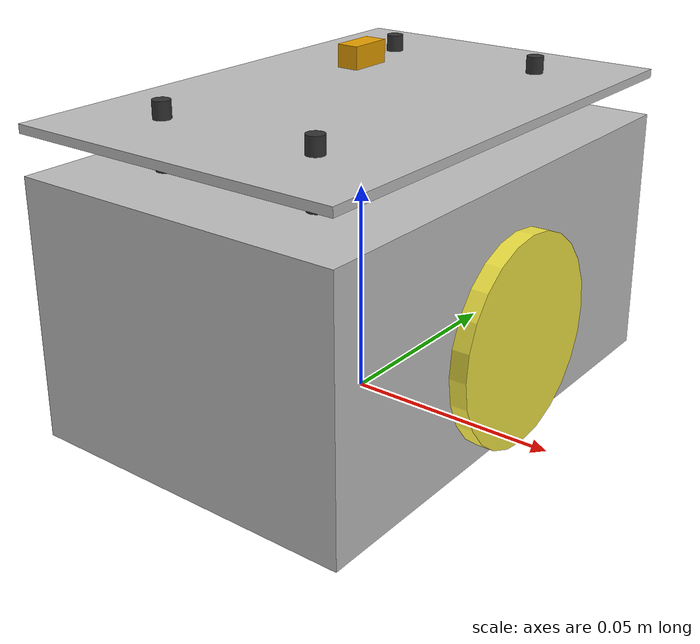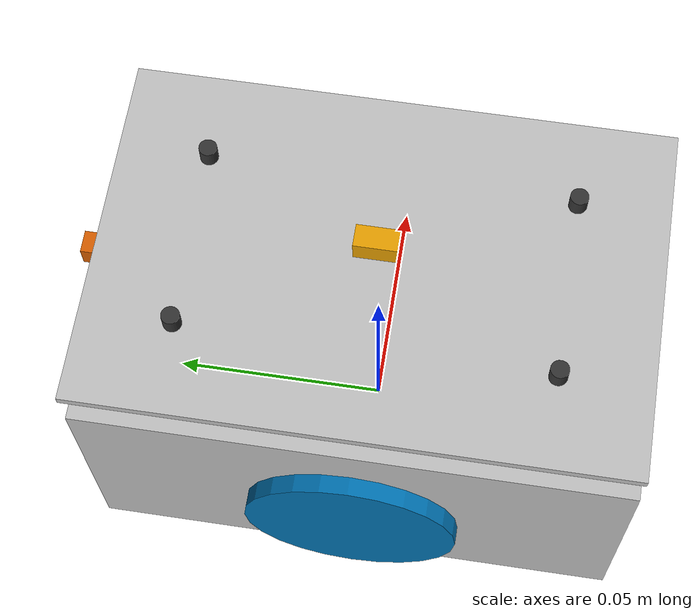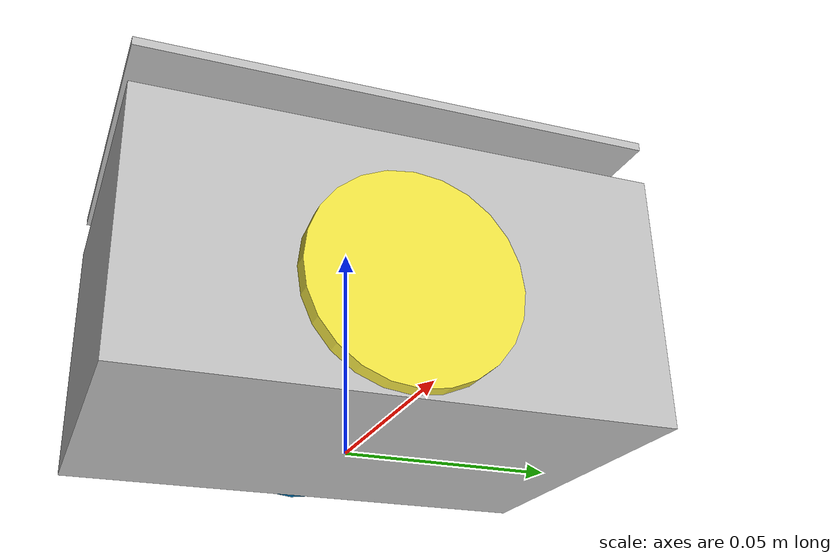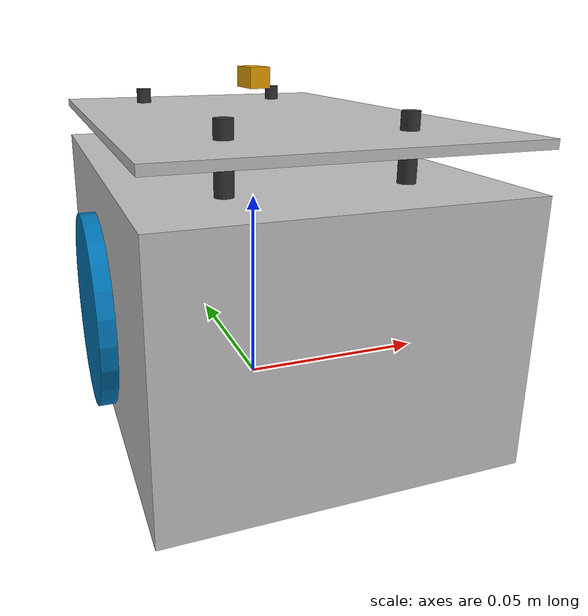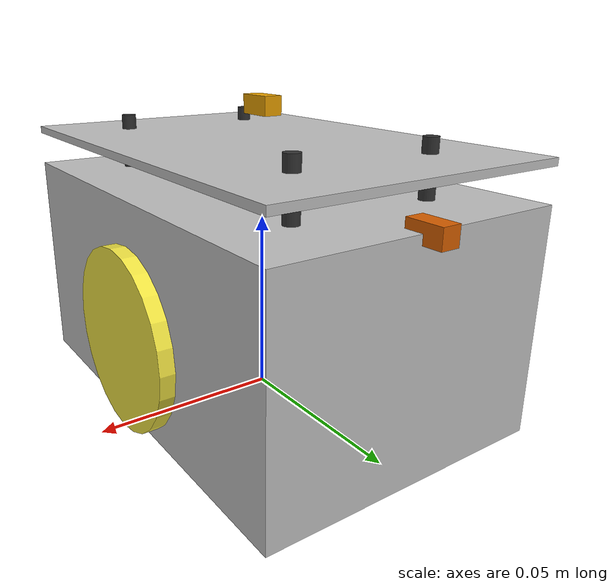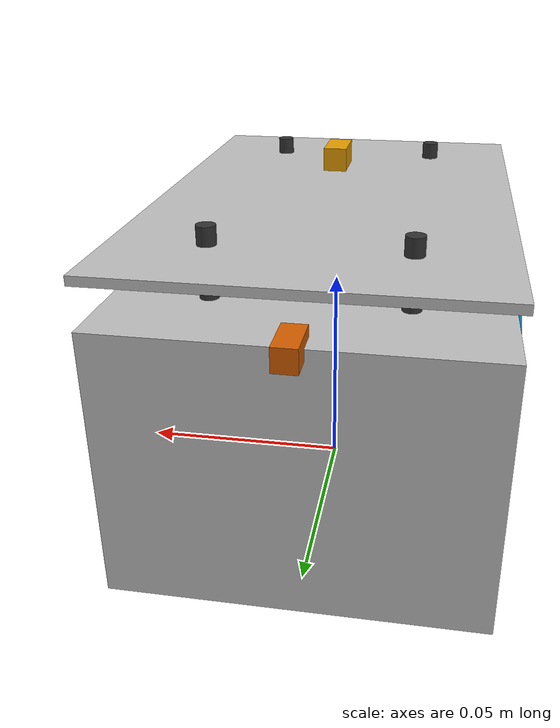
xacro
<?xml version = "1.0"?>
<robot name = "MouseRobot" xmlns:xacro = "http://ros.org/wiki/xacro">
<!--    You can confirm your manipulator on "rviz" to put down this cord.
        roslaunch urdf_tutorial display.launch model:=urdf/mouse/mouse_robot.urdf.xacro -->

    <xacro:include filename = "$(find manipulator_simulation)/urdf/mouse/body.urdf.xacro"/>
    <xacro:include filename = "$(find manipulator_simulation)/urdf/mouse/wheel.urdf.xacro"/>
    <xacro:include filename = "$(find manipulator_simulation)/urdf/mouse/light_sensor.urdf.xacro"/>
    <xacro:include filename = "$(find manipulator_simulation)/urdf/mouse/camera.urdf.xacro"/>
    <!-- colour definition -->
    <material name = "black">
        <color rgba = "0.2 0.2 0.2 1.0"/>
    </material>
    <material name = "grey">
        <color rgba = "0.75 0.75 0.75 1.0"/>
    </material>
    <material name = "red">
        <color rgba = "1.0 0 0 2.0"/>
    </material>
    <material name = "blue">
        <color rgba = "0 0 1.0 2.0"/>
    </material>
    <material name = "green">
        <color rgba = "0 1.0 0 2.0"/>
    </material>

    <!-- define empty link to fasten manipulator -->
    <link name = "world"/>

    <xacro:property name = "end_effector_base_link" value = "wrist_base_link"/>

    <xacro:mouse parent = "world" end_effector_link = "${end_effector_base_link}" colour1 = "black" colour2 = "grey">
        <origin xyz = "0 0 0" rpy = "0 0 0"/>
    </xacro:mouse>

    <xacro:wheel rl = "r" parent = "base_link"/>
    <xacro:wheel rl = "l" parent = "base_link"/>

    <!-- xyz is relative distances from base_link-->
    <xacro:gazebo_light_sensor name = "front" parent = "base_link" xyz = "0 0.06 0.03" direction = "0"/>

    <gazebo>
        <plugin name = "differential_drive_controller" filename = "libgazebo_ros_diff_drive.so">
            <leftJoint>wheel_l_joint</leftJoint>
            <rightJoint>wheel_r_joint</rightJoint>
            <robotBaseFrame>base_link</robotBaseFrame>
            <wheelSeparation>0.08</wheelSeparation>
            <wheelDiameter>0.048</wheelDiameter>
            <publishWheelJointState>true</publishWheelJointState>
            <legacyMode>false</legacyMode>
            <odometryTopic>odometry</odometryTopic>
            <odometryFrame>odometry</odometryFrame>
        </plugin>
    </gazebo>

</robot>

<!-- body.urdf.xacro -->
<robot name = "mouse" xmlns:xacro = "http://ros.org/wiki/xacro">
    <xacro:macro name = "mouse" params = "parent end_effector_link colour1 colour2 *origin">

        <xacro:property name = "PI"         value = "3.1415926535897931"/>
        <xacro:property name = "b_m"        value = "1.80"/>
        <xacro:property name = "b_m2"       value = "${b_m/12}"/>
        <xacro:property name = "b_y"        value = "0.08"/>
        <xacro:property name = "b_x"        value = "0.12"/>
        <xacro:property name = "b_z"        value = "0.06"/>
        <xacro:property name = "cyl_h"      value = "0.015"/>
        <xacro:property name = "cyl_r"      value = "0.002"/>
        <xacro:property name = "cyl_gap_x"  value = "0.02"/>
        <xacro:property name = "cyl_gap_y"  value = "0.04"/>

        <link name = "base_link">
            <!-- deployment settings -->
                <!-- boxes -->
            <visual>
                <geometry>
                    <box size = "${b_y} ${b_x} ${b_z}"/>
                </geometry>
                <material name = "${colour2}"/>
            </visual>
            <visual>
                <geometry>
                    <box size = "${b_y} ${b_x} ${b_z/30}"/>
                </geometry>
                <origin xyz = "0 0 ${b_z /1.5}" rpy = "0 0 0"/>
                <material name = "${colour2}"/>
            </visual>
                <!-- cylinders -->
            <visual>
                <geometry>
                    <cylinder radius = "${cyl_r}" length = "${cyl_h}"/>
                </geometry>
                <origin xyz = "${cyl_gap_x} ${cyl_gap_y} ${b_z /2 + cyl_h/2}" rpy = "0 0 0"/>
                <material name = "${colour1}"/>
            </visual>
            <visual>
                <geometry>
                    <cylinder radius = "${cyl_r}" length = "${cyl_h}"/>
                </geometry>
                <origin xyz = "${-cyl_gap_x} ${cyl_gap_y} ${b_z /2 + cyl_h/2}" rpy = "0 0 0"/>
                <material name = "${colour1}"/>
            </visual>
            <visual>
                <geometry>
                    <cylinder radius = "${cyl_r}" length = "${cyl_h}"/>
                </geometry>
                <origin xyz = "${cyl_gap_x} ${-cyl_gap_y} ${b_z /2 + cyl_h/2}" rpy = "0 0 0"/>
                <material name = "${colour1}"/>
            </visual>
            <visual>
                <geometry>
                    <cylinder radius = "${cyl_r}" length = "${cyl_h}"/>
                </geometry>
                <origin xyz = "${-cyl_gap_x} ${-cyl_gap_y} ${b_z /2 + cyl_h/2}" rpy = "0 0 0"/>
                <material name = "${colour1}"/>
            </visual>

            <collision>
                <geometry>
                    <box size = "${b_y} ${b_x} ${b_z}"/>
                </geometry>
            </collision>

            <inertial>
                <origin xyz = "0 0 0" rpy = "0 0 0"/>
                <mass value = "${b_m}"/>
                <inertia    ixx = "${b_m2*(b_x*b_x+b_z*b_z)}"   ixy = "0"                           ixz = "0"
                            iyx = "0"                           iyy = "${b_m2*(b_y*b_y+b_z*b_z)}"   iyz = "0"
                            izx = "0"                           izy = "0"                           izz = "${b_m2*(b_y*b_y+b_x*b_x)}"/>
            </inertial>
        </link>

        <joint name = "base_joint" type = "fixed">
            <parent link = "${parent}"/>
            <child link = "base_link"/>
            <origin xyz = "0 0 ${b_z /2}" rpy = "0 0 0"/>   <!-- origin position of robot -->
            <xacro:insert_block name = "origin"/>
        </joint>
    </xacro:macro>

</robot>

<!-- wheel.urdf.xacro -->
<robot name = "wheel" xmlns:xacro = "http://ros.org/wiki/xacro">

  <xacro:property name = "PI"       value = "3.1415926535897931"/>
  <xacro:property name = "wheel_r"  value = "0.024"/>
  <xacro:property name = "wheel_h"  value = "0.008"/>
  <xacro:property name = "wheel_m"  value = "0.112"/>

  <xacro:macro name = "wheel" params = "rl parent">
    <!-- wheels -->
    <link name = "wheel_${rl}">
      <visual>
        <geometry>
          <cylinder length = "${wheel_h}" radius = "${wheel_r}"/>
        </geometry>
      </visual>
      <collision>
        <geometry>
          <cylinder radius = "${wheel_r}" length = "${wheel_h}"/>
        </geometry>
      </collision>
      <inertial>
        <origin xyz = "0 0 0" rpy = "0 0 0"/>
        <mass value = "${wheel_m}" />
        <inertia  ixx = "${wheel_m*(3*wheel_r*wheel_r+wheel_h*wheel_h)/12}" ixy = "0"  ixz = "0"
                  iyx = "0"  iyy = "${wheel_m*(3*wheel_r*wheel_r+wheel_h*wheel_h)/12}" iyz = "0"
                  izx = "0"  izy = "0"  izz = "${wheel_m*(wheel_r*wheel_r)/2}"/>
      </inertial>
    </link>

    <joint name = "wheel_${rl}_joint" type = "continuous">
      <parent link = "${parent}"/>
      <child link = "wheel_${rl}"/>
      <xacro:if value = "${rl == 'r'}">
        <origin xyz = "0.04 0 ${0.022 - 0.0275}" rpy = "0 ${PI/2} 0"/>
      </xacro:if>

      <xacro:if value = "${rl == 'l'}">
        <origin xyz = "-0.04 0 ${0.022 - 0.0275}" rpy = "0 ${PI/2} 0"/>
      </xacro:if>

      <axis xyz = "0 0 -1"/>
      <limit effort = "10" velocity = "10"/>
      <joint_properties damping = "0.0" friction = "0.0"/>
    </joint>

  </xacro:macro>

</robot>

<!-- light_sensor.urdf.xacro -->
<robot name = "light_sensor" xmlns:xacro = "http://ros.org/wiki/xacro">

<!-- light range origin 0.18 -->>
<xacro:property name = "PI"             value = "3.14159265358979"/>
<xacro:property name = "light_range"    value = "0.5"/>
<xacro:property name = "min_range"      value = "0.1"/>
<xacro:property name = "max_range"      value = "1.0"/>

<xacro:macro name = "gazebo_light_sensor" params = "name parent xyz direction">

    <link name = "${name}_sensor">
        <visual>
            <geometry>
                <box size = "0.01 0.005 0.005"/>
            </geometry>
        </visual>

        <inertial>
            <mass value = "0.0001"/>
            <inertia    ixx = "0.0001"  ixy = "0"       ixz = "0"
                        iyx = "0"       iyy = "0.0001"  iyz = "0"
                        izx = "0"       izy = "0"       izz = "0.001"/>
        </inertial>
    </link>

    <joint name = "${name}_sensor_joint" type = "fixed">
        <parent link = "${parent}"/>
        <child link = "${name}_sensor"/>
        <origin xyz = "${xyz}" rpy = "0 0 ${PI/2 + direction}"/>
    </joint>

    <gazebo reference = "${name}_sensor">
        <sensor type = "ray" name = "${name}_light_sensor">
            <pose>0 0 0 0 0 0</pose>
            <visualize>true</visualize>
            <update_rate>20</update_rate>
            <ray>
                <scan>
                    <horizontal>
                        <sapmles>10</sapmles>
                        <resolution>1</resolution>
                        <min_angle>${-light_range / 2}</min_angle>
                        <max_angle>${light_range / 2}</max_angle>
                    </horizontal>
                </scan>

                <range>
                    <min>${min_range}</min>
                    <max>${max_range}</max>
                    <resolution>0.001</resolution>
                </range>

                <noise>
                    <type>gaussian</type>
                    <mean>0.0</mean>
                    <stdev>0.005</stdev>
                </noise>
            </ray>

            <plugin name = "gazebo_${name}_light_sensor_controller" filename = "libgazebo_ros_laser.so">
                <topicName>/light_sensor/${name}/scan</topicName>
                <frameName>${name}_sensor</frameName>
            </plugin>
        </sensor>
    </gazebo>

</xacro:macro>
</robot>

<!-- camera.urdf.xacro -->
<robot name = "camera" xmlns:xacro = "http://ros.org/wiki/xacro">

<xacro:property name = "PI" value = "3.14159265358979"/>

<!-- Let's try to model camera! -->
<!-- reference: https://qiita.com/srs/items/7d78f9ad21a0e61f5bff -->
<!-- gazebo official: http://gazebosim.org/tutorials?tut=ros_gzplugins -->

  <!-- camera -->
    <link name = "camera">
        <visual>
            <geometry>
                <box size = "0.01 0.005 0.005"/>
            </geometry>
        </visual>

        <inertial>
            <mass value = "0.0001"/>
            <inertia    ixx = "0.0001"  ixy = "0"       ixz = "0"
                        iyx = "0"       iyy = "0.0001"  iyz = "0"
                        izx = "0"       izy = "0"       izz = "0.001" />
        </inertial>
    </link>

    <joint name = "camera_sensor_joint" type = "fixed">
        <parent link = "base_link"/>
        <child link = "camera"/>
        <origin xyz = "0 0 0.05" rpy  = "0 0 1.57"/>
    </joint>

    <gazebo reference = "camera">
        <sensor type = "camera" name = "camera1">
        <update_rate>30.0</update_rate>
        <camera name = "head">
            <horizontal_fov>1.3962634</horizontal_fov>
            <image>
                <width>800</width>
                <height>800</height>
                <format>R8G8B8</format>
            </image>

            <clip>
                <near>0.02</near>
                <far>300</far>
            </clip>

            <noise>
                <type>gaussian</type>
                <mean>0.0</mean>
                <stddev>0.007</stddev>
            </noise>
        </camera>

      <plugin name = "camera_controller" filename = "libgazebo_ros_camera.so">
        <alwaysOn>true</alwaysOn>
        <updateRate>0.0</updateRate>
        <cameraName>rrbot/camera1</cameraName>
        <imageTopicName>image_raw</imageTopicName>
        <cameraInfoTopicName>camera_info</cameraInfoTopicName>
        <frameName>camera</frameName>
        <hackBaseline>0.07</hackBaseline>
        <distortionK1>0.0</distortionK1>
        <distortionK2>0.0</distortionK2>
        <distortionK3>0.0</distortionK3>
        <distortionT1>0.0</distortionT1>
        <distortionT2>0.0</distortionT2>
      </plugin>
    </sensor>
  </gazebo>

</robot>
